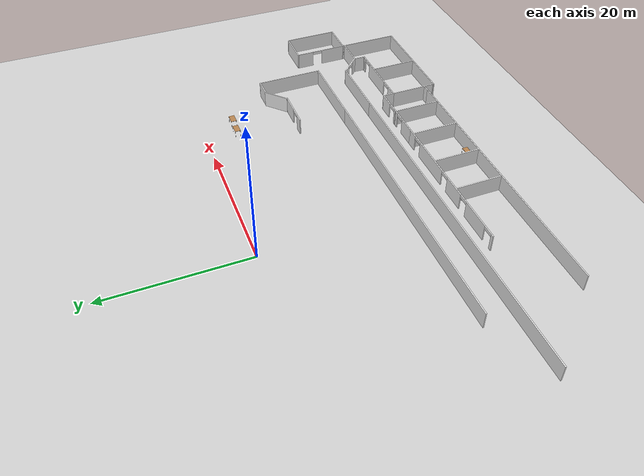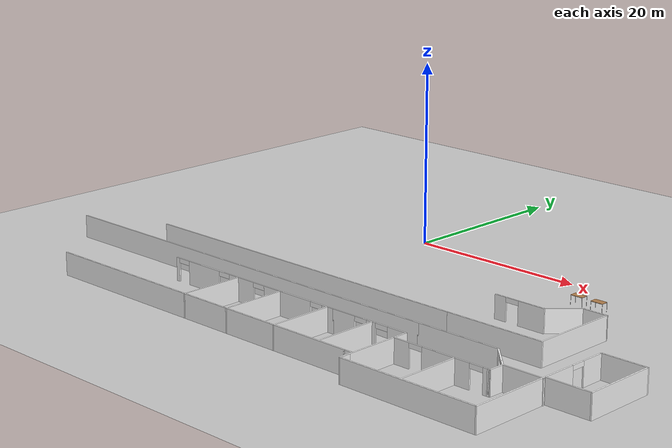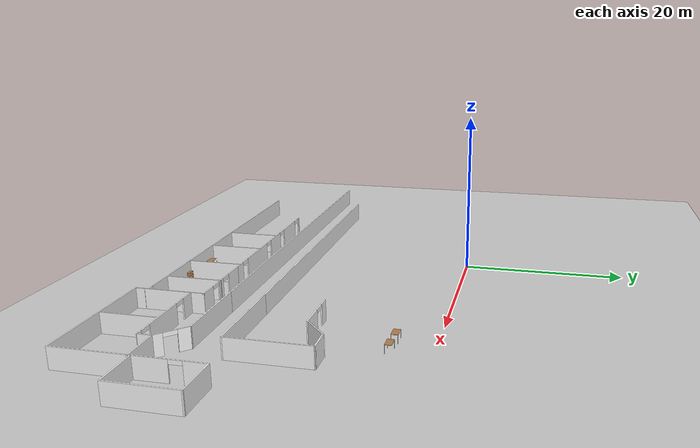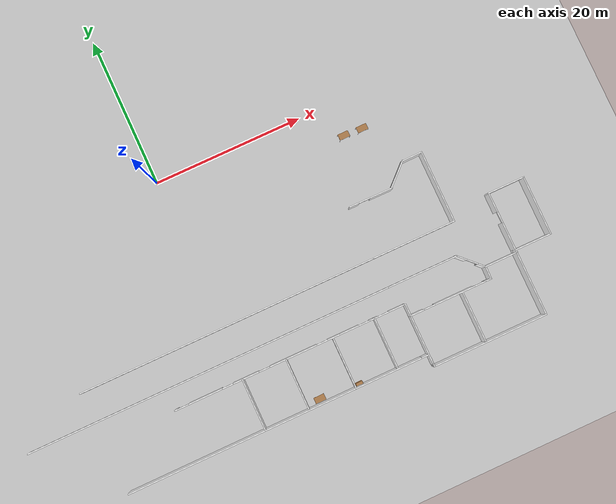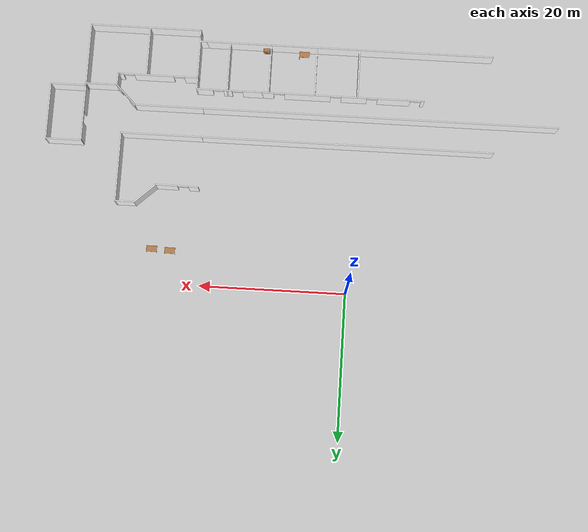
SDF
<sdf version="1.6">
 <world name="default">
  <model name="ground_plane">
   <static>1</static>
   <link name="link">
    <collision name="collision">
     <geometry><plane><normal>0 0 1</normal><size>100 100</size></plane></geometry>
     <surface><friction><ode><mu>100</mu><mu2>50</mu2></ode></friction></surface>
    </collision>
    <visual name="visual">
     <cast_shadows>0</cast_shadows>
     <geometry><plane><normal>0 0 1</normal><size>100 100</size></plane></geometry>
     <material>
      <script>
       <uri>model://office_env/materials/scripts</uri>
       <uri>model://office_env/materials/textures</uri>
       <name>wall</name>
      </script>
     </material>
    </visual>
   </link>
  </model>
  <model name="aule_N">
   <pose>0.1887 -1.4289 0 0 -0 0</pose>
   <link name="Wall_186">
    <pose>37.2203 -21.5545 0 0 0 -1.5708</pose>
    <visual name="Wall_186_Visual_0">
     <pose>-2.80179 0 1.25 0 -0 0</pose>
     <geometry><box><size>2.64642 0.15 2.5</size></box></geometry>
     <material>
      <script>
       <uri>model://office_env/materials/scripts</uri>
       <uri>model://office_env/materials/textures</uri>
       <name>wall</name>
      </script>
      <ambient>1 1 1 1</ambient>
     </material>
    </visual>
    <collision name="Wall_186_Collision_0">
     <geometry><box><size>2.64642 0.15 2.5</size></box></geometry>
     <pose>-2.80179 0 1.25 0 -0 0</pose>
    </collision>
    <visual name="Wall_186_Visual_1">
     <pose>2.07321 0 1.25 0 -0 0</pose>
     <geometry><box><size>4.10358 0.15 2.5</size></box></geometry>
     <material>
      <script>
       <uri>model://office_env/materials/scripts</uri>
       <uri>model://office_env/materials/textures</uri>
       <name>wall</name>
      </script>
      <ambient>1 1 1 1</ambient>
     </material>
    </visual>
    <collision name="Wall_186_Collision_1">
     <geometry><box><size>4.10358 0.15 2.5</size></box></geometry>
     <pose>2.07321 0 1.25 0 -0 0</pose>
    </collision>
    <visual name="Wall_186_Visual_2">
     <pose>-0.728584 0 2.25 0 -0 0</pose>
     <geometry><box><size>1.5 0.15 0.5</size></box></geometry>
     <material>
      <script>
       <uri>model://office_env/materials/scripts</uri>
       <uri>model://office_env/materials/textures</uri>
       <name>wall</name>
      </script>
      <ambient>1 1 1 1</ambient>
     </material>
    </visual>
    <collision name="Wall_186_Collision_2">
     <geometry><box><size>1.5 0.15 0.5</size></box></geometry>
     <pose>-0.728584 0 2.25 0 -0 0</pose>
    </collision>
   </link>
   <link name="Wall_190">
    <collision name="Wall_190_Collision">
     <geometry><box><size>49.25 0.15 2.5</size></box></geometry>
     <pose>0 0 1.25 0 -0 0</pose>
    </collision>
    <visual name="Wall_190_Visual">
     <pose>0 0 1.25 0 -0 0</pose>
     <geometry><box><size>49.25 0.15 2.5</size></box></geometry>
     <material>
      <script>
       <uri>model://office_env/materials/scripts</uri>
       <uri>model://office_env/materials/textures</uri>
       <name>wall</name>
      </script>
      <ambient>1 1 1 1</ambient>
     </material>
    </visual>
    <pose>-3.68943 -22.9551 0 0 -0 0</pose>
   </link>
   <link name="Wall_192">
    <collision name="Wall_192_Collision">
     <geometry><box><size>9.5 0.15 2.5</size></box></geometry>
     <pose>0 0 1.25 0 -0 0</pose>
    </collision>
    <visual name="Wall_192_Visual">
     <pose>0 0 1.25 0 -0 0</pose>
     <geometry><box><size>9.5 0.15 2.5</size></box></geometry>
     <material>
      <script>
       <uri>model://office_env/materials/scripts</uri>
       <uri>model://office_env/materials/textures</uri>
       <name>wall</name>
      </script>
      <ambient>1 1 1 1</ambient>
     </material>
    </visual>
    <pose>25.5356 -22.9551 0 0 -0 0</pose>
   </link>
   <link name="Wall_193">
    <pose>31.5718 -24.3163 0 0 0 -0.785398</pose>
    <visual name="Wall_193_Visual_0">
     <pose>-1.29532 0 1.25 0 -0 0</pose>
     <geometry><box><size>1.40936 0.15 2.5</size></box></geometry>
     <material>
      <script>
       <uri>model://office_env/materials/scripts</uri>
       <uri>model://office_env/materials/textures</uri>
       <name>wall</name>
      </script>
      <ambient>1 1 1 1</ambient>
     </material>
    </visual>
    <collision name="Wall_193_Collision_0">
     <geometry><box><size>1.40936 0.15 2.5</size></box></geometry>
     <pose>-1.29532 0 1.25 0 -0 0</pose>
    </collision>
    <visual name="Wall_193_Visual_1">
     <pose>1.45468 0 1.25 0 -0 0</pose>
     <geometry><box><size>1.09064 0.15 2.5</size></box></geometry>
     <material>
      <script>
       <uri>model://office_env/materials/scripts</uri>
       <uri>model://office_env/materials/textures</uri>
       <name>wall</name>
      </script>
      <ambient>1 1 1 1</ambient>
     </material>
    </visual>
    <collision name="Wall_193_Collision_1">
     <geometry><box><size>1.09064 0.15 2.5</size></box></geometry>
     <pose>1.45468 0 1.25 0 -0 0</pose>
    </collision>
    <visual name="Wall_193_Visual_2">
     <pose>0.15936 0 2.25 0 -0 0</pose>
     <geometry><box><size>1.5 0.15 0.5</size></box></geometry>
     <material>
      <script>
       <uri>model://office_env/materials/scripts</uri>
       <uri>model://office_env/materials/textures</uri>
       <name>wall</name>
      </script>
      <ambient>1 1 1 1</ambient>
     </material>
    </visual>
    <collision name="Wall_193_Collision_2">
     <geometry><box><size>1.5 0.15 0.5</size></box></geometry>
     <pose>0.15936 0 2.25 0 -0 0</pose>
    </collision>
   </link>
   <link name="Wall_194">
    <collision name="Wall_194_Collision">
     <geometry><box><size>4.5 0.15 2.5</size></box></geometry>
     <pose>0 0 1.25 0 -0 0</pose>
    </collision>
    <visual name="Wall_194_Visual">
     <pose>0 0 1.25 0 -0 0</pose>
     <geometry><box><size>4.5 0.15 2.5</size></box></geometry>
     <material>
      <script>
       <uri>model://office_env/materials/scripts</uri>
       <uri>model://office_env/materials/textures</uri>
       <name>wall</name>
      </script>
      <ambient>1 1 1 1</ambient>
     </material>
    </visual>
    <pose>35.1079 -25.6775 0 0 -0 0</pose>
   </link>
   <link name="Wall_201">
    <pose>1.5658 -25.7162 0 0 -0 0</pose>
    <visual name="Wall_201_Visual_0">
     <pose>-11.0306 0 1.25 0 -0 0</pose>
     <geometry><box><size>0.438757 0.15 2.5</size></box></geometry>
     <material>
      <script>
       <uri>model://office_env/materials/scripts</uri>
       <uri>model://office_env/materials/textures</uri>
       <name>wall</name>
      </script>
      <ambient>1 1 1 1</ambient>
     </material>
    </visual>
    <collision name="Wall_201_Collision_0">
     <geometry><box><size>0.438757 0.15 2.5</size></box></geometry>
     <pose>-11.0306 0 1.25 0 -0 0</pose>
    </collision>
    <visual name="Wall_201_Visual_1">
     <pose>-7.0473 0 1.25 0 -0 0</pose>
     <geometry><box><size>4.52788 0.15 2.5</size></box></geometry>
     <material>
      <script>
       <uri>model://office_env/materials/scripts</uri>
       <uri>model://office_env/materials/textures</uri>
       <name>wall</name>
      </script>
      <ambient>1 1 1 1</ambient>
     </material>
    </visual>
    <collision name="Wall_201_Collision_1">
     <geometry><box><size>4.52788 0.15 2.5</size></box></geometry>
     <pose>-7.0473 0 1.25 0 -0 0</pose>
    </collision>
    <visual name="Wall_201_Visual_2">
     <pose>-1.52512 0 1.25 0 -0 0</pose>
     <geometry><box><size>3.51649 0.15 2.5</size></box></geometry>
     <material>
      <script>
       <uri>model://office_env/materials/scripts</uri>
       <uri>model://office_env/materials/textures</uri>
       <name>wall</name>
      </script>
      <ambient>1 1 1 1</ambient>
     </material>
    </visual>
    <collision name="Wall_201_Collision_2">
     <geometry><box><size>3.51649 0.15 2.5</size></box></geometry>
     <pose>-1.52512 0 1.25 0 -0 0</pose>
    </collision>
    <visual name="Wall_201_Visual_3">
     <pose>4.92755 0 1.25 0 -0 0</pose>
     <geometry><box><size>6.38884 0.15 2.5</size></box></geometry>
     <material>
      <script>
       <uri>model://office_env/materials/scripts</uri>
       <uri>model://office_env/materials/textures</uri>
       <name>wall</name>
      </script>
      <ambient>1 1 1 1</ambient>
     </material>
    </visual>
    <collision name="Wall_201_Collision_3">
     <geometry><box><size>6.38884 0.15 2.5</size></box></geometry>
     <pose>4.92755 0 1.25 0 -0 0</pose>
    </collision>
    <visual name="Wall_201_Visual_4">
     <pose>10.436 0 1.25 0 -0 0</pose>
     <geometry><box><size>1.62803 0.15 2.5</size></box></geometry>
     <material>
      <script>
       <uri>model://office_env/materials/scripts</uri>
       <uri>model://office_env/materials/textures</uri>
       <name>wall</name>
      </script>
      <ambient>1 1 1 1</ambient>
     </material>
    </visual>
    <collision name="Wall_201_Collision_4">
     <geometry><box><size>1.62803 0.15 2.5</size></box></geometry>
     <pose>10.436 0 1.25 0 -0 0</pose>
    </collision>
    <visual name="Wall_201_Visual_5">
     <pose>-10.0612 0 2.25 0 -0 0</pose>
     <geometry><box><size>1.5 0.15 0.5</size></box></geometry>
     <material>
      <script>
       <uri>model://office_env/materials/scripts</uri>
       <uri>model://office_env/materials/textures</uri>
       <name>wall</name>
      </script>
      <ambient>1 1 1 1</ambient>
     </material>
    </visual>
    <collision name="Wall_201_Collision_5">
     <geometry><box><size>1.5 0.15 0.5</size></box></geometry>
     <pose>-10.0612 0 2.25 0 -0 0</pose>
    </collision>
    <visual name="Wall_201_Visual_6">
     <pose>-4.03336 0 2.25 0 -0 0</pose>
     <geometry><box><size>1.5 0.15 0.5</size></box></geometry>
     <material>
      <script>
       <uri>model://office_env/materials/scripts</uri>
       <uri>model://office_env/materials/textures</uri>
       <name>wall</name>
      </script>
      <ambient>1 1 1 1</ambient>
     </material>
    </visual>
    <collision name="Wall_201_Collision_6">
     <geometry><box><size>1.5 0.15 0.5</size></box></geometry>
     <pose>-4.03336 0 2.25 0 -0 0</pose>
    </collision>
    <visual name="Wall_201_Visual_7">
     <pose>0.98313 0 2.25 0 -0 0</pose>
     <geometry><box><size>1.5 0.15 0.5</size></box></geometry>
     <material>
      <script>
       <uri>model://office_env/materials/scripts</uri>
       <uri>model://office_env/materials/textures</uri>
       <name>wall</name>
      </script>
      <ambient>1 1 1 1</ambient>
     </material>
    </visual>
    <collision name="Wall_201_Collision_7">
     <geometry><box><size>1.5 0.15 0.5</size></box></geometry>
     <pose>0.98313 0 2.25 0 -0 0</pose>
    </collision>
    <visual name="Wall_201_Visual_8">
     <pose>8.87197 0 2.25 0 -0 0</pose>
     <geometry><box><size>1.5 0.15 0.5</size></box></geometry>
     <material>
      <script>
       <uri>model://office_env/materials/scripts</uri>
       <uri>model://office_env/materials/textures</uri>
       <name>wall</name>
      </script>
      <ambient>1 1 1 1</ambient>
     </material>
    </visual>
    <collision name="Wall_201_Collision_8">
     <geometry><box><size>1.5 0.15 0.5</size></box></geometry>
     <pose>8.87197 0 2.25 0 -0 0</pose>
    </collision>
   </link>
   <link name="Wall_202">
    <pose>17.2908 -25.7162 0 0 -0 0</pose>
    <visual name="Wall_202_Visual_0">
     <pose>-3.22144 0 1.25 0 -0 0</pose>
     <geometry><box><size>2.80712 0.15 2.5</size></box></geometry>
     <material>
      <script>
       <uri>model://office_env/materials/scripts</uri>
       <uri>model://office_env/materials/textures</uri>
       <name>wall</name>
      </script>
      <ambient>1 1 1 1</ambient>
     </material>
    </visual>
    <collision name="Wall_202_Collision_0">
     <geometry><box><size>2.80712 0.15 2.5</size></box></geometry>
     <pose>-3.22144 0 1.25 0 -0 0</pose>
    </collision>
    <visual name="Wall_202_Visual_1">
     <pose>0.246922 0 1.25 0 -0 0</pose>
     <geometry><box><size>1.12961 0.15 2.5</size></box></geometry>
     <material>
      <script>
       <uri>model://office_env/materials/scripts</uri>
       <uri>model://office_env/materials/textures</uri>
       <name>wall</name>
      </script>
      <ambient>1 1 1 1</ambient>
     </material>
    </visual>
    <collision name="Wall_202_Collision_1">
     <geometry><box><size>1.12961 0.15 2.5</size></box></geometry>
     <pose>0.246922 0 1.25 0 -0 0</pose>
    </collision>
    <visual name="Wall_202_Visual_2">
     <pose>3.46836 0 1.25 0 -0 0</pose>
     <geometry><box><size>2.31327 0.15 2.5</size></box></geometry>
     <material>
      <script>
       <uri>model://office_env/materials/scripts</uri>
       <uri>model://office_env/materials/textures</uri>
       <name>wall</name>
      </script>
      <ambient>1 1 1 1</ambient>
     </material>
    </visual>
    <collision name="Wall_202_Collision_2">
     <geometry><box><size>2.31327 0.15 2.5</size></box></geometry>
     <pose>3.46836 0 1.25 0 -0 0</pose>
    </collision>
    <visual name="Wall_202_Visual_3">
     <pose>-1.06788 0 2.25 0 -0 0</pose>
     <geometry><box><size>1.5 0.15 0.5</size></box></geometry>
     <material>
      <script>
       <uri>model://office_env/materials/scripts</uri>
       <uri>model://office_env/materials/textures</uri>
       <name>wall</name>
      </script>
      <ambient>1 1 1 1</ambient>
     </material>
    </visual>
    <collision name="Wall_202_Collision_3">
     <geometry><box><size>1.5 0.15 0.5</size></box></geometry>
     <pose>-1.06788 0 2.25 0 -0 0</pose>
    </collision>
    <visual name="Wall_202_Visual_4">
     <pose>1.56173 0 2.25 0 -0 0</pose>
     <geometry><box><size>1.5 0.15 0.5</size></box></geometry>
     <material>
      <script>
       <uri>model://office_env/materials/scripts</uri>
       <uri>model://office_env/materials/textures</uri>
       <name>wall</name>
      </script>
      <ambient>1 1 1 1</ambient>
     </material>
    </visual>
    <collision name="Wall_202_Collision_4">
     <geometry><box><size>1.5 0.15 0.5</size></box></geometry>
     <pose>1.56173 0 2.25 0 -0 0</pose>
    </collision>
   </link>
   <link name="Wall_203">
    <collision name="Wall_203_Collision">
     <geometry><box><size>1.75 0.15 2.5</size></box></geometry>
     <pose>0 0 1.25 0 -0 0</pose>
    </collision>
    <visual name="Wall_203_Visual">
     <pose>0 0 1.25 0 -0 0</pose>
     <geometry><box><size>1.75 0.15 2.5</size></box></geometry>
     <material>
      <script>
       <uri>model://office_env/materials/scripts</uri>
       <uri>model://office_env/materials/textures</uri>
       <name>wall</name>
      </script>
      <ambient>1 1 1 1</ambient>
     </material>
    </visual>
    <pose>21.8408 -26.5162 0 0 0 -1.5708</pose>
   </link>
   <link name="Wall_204">
    <pose>27.2658 -27.3162 0 0 -0 0</pose>
    <visual name="Wall_204_Visual_0">
     <pose>-4.54037 0 1.25 0 -0 0</pose>
     <geometry><box><size>1.91926 0.15 2.5</size></box></geometry>
     <material>
      <script>
       <uri>model://office_env/materials/scripts</uri>
       <uri>model://office_env/materials/textures</uri>
       <name>wall</name>
      </script>
      <ambient>1 1 1 1</ambient>
     </material>
    </visual>
    <collision name="Wall_204_Collision_0">
     <geometry><box><size>1.91926 0.15 2.5</size></box></geometry>
     <pose>-4.54037 0 1.25 0 -0 0</pose>
    </collision>
    <visual name="Wall_204_Visual_1">
     <pose>0.656549 0 1.25 0 -0 0</pose>
     <geometry><box><size>5.47457 0.15 2.5</size></box></geometry>
     <material>
      <script>
       <uri>model://office_env/materials/scripts</uri>
       <uri>model://office_env/materials/textures</uri>
       <name>wall</name>
      </script>
      <ambient>1 1 1 1</ambient>
     </material>
    </visual>
    <collision name="Wall_204_Collision_1">
     <geometry><box><size>5.47457 0.15 2.5</size></box></geometry>
     <pose>0.656549 0 1.25 0 -0 0</pose>
    </collision>
    <visual name="Wall_204_Visual_2">
     <pose>5.19692 0 1.25 0 -0 0</pose>
     <geometry><box><size>0.606165 0.15 2.5</size></box></geometry>
     <material>
      <script>
       <uri>model://office_env/materials/scripts</uri>
       <uri>model://office_env/materials/textures</uri>
       <name>wall</name>
      </script>
      <ambient>1 1 1 1</ambient>
     </material>
    </visual>
    <collision name="Wall_204_Collision_2">
     <geometry><box><size>0.606165 0.15 2.5</size></box></geometry>
     <pose>5.19692 0 1.25 0 -0 0</pose>
    </collision>
    <visual name="Wall_204_Visual_3">
     <pose>-2.83074 0 2.25 0 -0 0</pose>
     <geometry><box><size>1.5 0.15 0.5</size></box></geometry>
     <material>
      <script>
       <uri>model://office_env/materials/scripts</uri>
       <uri>model://office_env/materials/textures</uri>
       <name>wall</name>
      </script>
      <ambient>1 1 1 1</ambient>
     </material>
    </visual>
    <collision name="Wall_204_Collision_3">
     <geometry><box><size>1.5 0.15 0.5</size></box></geometry>
     <pose>-2.83074 0 2.25 0 -0 0</pose>
    </collision>
    <visual name="Wall_204_Visual_4">
     <pose>4.14384 0 2.25 0 -0 0</pose>
     <geometry><box><size>1.5 0.15 0.5</size></box></geometry>
     <material>
      <script>
       <uri>model://office_env/materials/scripts</uri>
       <uri>model://office_env/materials/textures</uri>
       <name>wall</name>
      </script>
      <ambient>1 1 1 1</ambient>
     </material>
    </visual>
    <collision name="Wall_204_Collision_4">
     <geometry><box><size>1.5 0.15 0.5</size></box></geometry>
     <pose>4.14384 0 2.25 0 -0 0</pose>
    </collision>
   </link>
   <link name="Wall_205">
    <collision name="Wall_205_Collision">
     <geometry><box><size>0.25 0.15 2.5</size></box></geometry>
     <pose>0 0 1.25 0 -0 0</pose>
    </collision>
    <visual name="Wall_205_Visual">
     <pose>0 0 1.25 0 -0 0</pose>
     <geometry><box><size>0.25 0.15 2.5</size></box></geometry>
     <material>
      <script>
       <uri>model://office_env/materials/scripts</uri>
       <uri>model://office_env/materials/textures</uri>
       <name>wall</name>
      </script>
      <ambient>1 1 1 1</ambient>
     </material>
    </visual>
    <pose>32.7408 -27.3162 0 0 -0 0</pose>
   </link>
   <link name="Wall_206">
    <collision name="Wall_206_Collision">
     <geometry><box><size>0.25 0.15 2.5</size></box></geometry>
     <pose>0 0 1.25 0 -0 0</pose>
    </collision>
    <visual name="Wall_206_Visual">
     <pose>0 0 1.25 0 -0 0</pose>
     <geometry><box><size>0.25 0.15 2.5</size></box></geometry>
     <material>
      <script>
       <uri>model://office_env/materials/scripts</uri>
       <uri>model://office_env/materials/textures</uri>
       <name>wall</name>
      </script>
      <ambient>1 1 1 1</ambient>
     </material>
    </visual>
    <pose>32.8408 -27.3162 0 0 -0 0</pose>
   </link>
   <link name="Wall_207">
    <collision name="Wall_207_Collision">
     <geometry><box><size>1.78929 0.15 2.5</size></box></geometry>
     <pose>0 0 1.25 0 -0 0</pose>
    </collision>
    <visual name="Wall_207_Visual">
     <pose>0 0 1.25 0 -0 0</pose>
     <geometry><box><size>1.78929 0.15 2.5</size></box></geometry>
     <material>
      <script>
       <uri>model://office_env/materials/scripts</uri>
       <uri>model://office_env/materials/textures</uri>
       <name>wall</name>
      </script>
      <ambient>1 1 1 1</ambient>
     </material>
    </visual>
    <pose>32.9119 -26.4969 0 0 -0 1.54509</pose>
   </link>
   <link name="Wall_209">
    <collision name="Wall_209_Collision">
     <geometry><box><size>6.75 0.15 2.5</size></box></geometry>
     <pose>0 0 1.25 0 -0 0</pose>
    </collision>
    <visual name="Wall_209_Visual">
     <pose>0 0 1.25 0 -0 0</pose>
     <geometry><box><size>6.75 0.15 2.5</size></box></geometry>
     <material>
      <script>
       <uri>model://office_env/materials/scripts</uri>
       <uri>model://office_env/materials/textures</uri>
       <name>wall</name>
      </script>
      <ambient>1 1 1 1</ambient>
     </material>
    </visual>
    <pose>21.8408 -30.6162 0 0 0 -1.5708</pose>
   </link>
   <link name="Wall_213">
    <collision name="Wall_213_Collision">
     <geometry><box><size>7 0.15 2.5</size></box></geometry>
     <pose>0 0 1.25 0 -0 0</pose>
    </collision>
    <visual name="Wall_213_Visual">
     <pose>0 0 1.25 0 -0 0</pose>
     <geometry><box><size>7 0.15 2.5</size></box></geometry>
     <material>
      <script>
       <uri>model://office_env/materials/scripts</uri>
       <uri>model://office_env/materials/textures</uri>
       <name>wall</name>
      </script>
      <ambient>1 1 1 1</ambient>
     </material>
    </visual>
    <pose>17.6159 -29.1253 0 0 0 -1.5708</pose>
   </link>
   <link name="Wall_217">
    <collision name="Wall_217_Collision">
     <geometry><box><size>7 0.15 2.5</size></box></geometry>
     <pose>0 0 1.25 0 -0 0</pose>
    </collision>
    <visual name="Wall_217_Visual">
     <pose>0 0 1.25 0 -0 0</pose>
     <geometry><box><size>7 0.15 2.5</size></box></geometry>
     <material>
      <script>
       <uri>model://office_env/materials/scripts</uri>
       <uri>model://office_env/materials/textures</uri>
       <name>wall</name>
      </script>
      <ambient>1 1 1 1</ambient>
     </material>
    </visual>
    <pose>11.8942 -29.1817 0 0 0 -1.5708</pose>
   </link>
   <link name="Wall_219">
    <collision name="Wall_219_Collision">
     <geometry><box><size>7 0.15 2.5</size></box></geometry>
     <pose>0 0 1.25 0 -0 0</pose>
    </collision>
    <visual name="Wall_219_Visual">
     <pose>0 0 1.25 0 -0 0</pose>
     <geometry><box><size>7 0.15 2.5</size></box></geometry>
     <material>
      <script>
       <uri>model://office_env/materials/scripts</uri>
       <uri>model://office_env/materials/textures</uri>
       <name>wall</name>
      </script>
      <ambient>1 1 1 1</ambient>
     </material>
    </visual>
    <pose>5.50219 -29.1817 0 0 0 -1.5708</pose>
   </link>
   <link name="Wall_22">
    <collision name="Wall_22_Collision">
     <geometry><box><size>40 0.15 2.5</size></box></geometry>
     <pose>0 0 1.25 0 -0 0</pose>
    </collision>
    <visual name="Wall_22_Visual">
     <pose>0 0 1.25 0 -0 0</pose>
     <geometry><box><size>40 0.15 2.5</size></box></geometry>
     <material>
      <script>
       <uri>model://office_env/materials/scripts</uri>
       <uri>model://office_env/materials/textures</uri>
       <name>wall</name>
      </script>
      <ambient>1 1 1 1</ambient>
     </material>
    </visual>
    <pose>0.945301 -32.6045 0 0 -0 0</pose>
   </link>
   <link name="Wall_221">
    <collision name="Wall_221_Collision">
     <geometry><box><size>7 0.15 2.5</size></box></geometry>
     <pose>0 0 1.25 0 -0 0</pose>
    </collision>
    <visual name="Wall_221_Visual">
     <pose>0 0 1.25 0 -0 0</pose>
     <geometry><box><size>7 0.15 2.5</size></box></geometry>
     <material>
      <script>
       <uri>model://office_env/materials/scripts</uri>
       <uri>model://office_env/materials/textures</uri>
       <name>wall</name>
      </script>
      <ambient>1 1 1 1</ambient>
     </material>
    </visual>
    <pose>-0.444779 -29.1817 0 0 0 -1.5708</pose>
   </link>
   <link name="Wall_233">
    <collision name="Wall_233_Collision">
     <geometry><box><size>15.5 0.15 2.5</size></box></geometry>
     <pose>0 0 1.25 0 -0 0</pose>
    </collision>
    <visual name="Wall_233_Visual">
     <pose>0 0 1.25 0 -0 0</pose>
     <geometry><box><size>15.5 0.15 2.5</size></box></geometry>
     <material>
      <script>
       <uri>model://office_env/materials/scripts</uri>
       <uri>model://office_env/materials/textures</uri>
       <name>wall</name>
      </script>
      <ambient>1 1 1 1</ambient>
     </material>
    </visual>
    <pose>29.5453 -34.2006 0 0 -0 3.14159</pose>
   </link>
   <link name="Wall_234">
    <collision name="Wall_234_Collision">
     <geometry><box><size>1.25 0.15 2.5</size></box></geometry>
     <pose>0 0 1.25 0 -0 0</pose>
    </collision>
    <visual name="Wall_234_Visual">
     <pose>0 0 1.25 0 -0 0</pose>
     <geometry><box><size>1.25 0.15 2.5</size></box></geometry>
     <material>
      <script>
       <uri>model://office_env/materials/scripts</uri>
       <uri>model://office_env/materials/textures</uri>
       <name>wall</name>
      </script>
      <ambient>1 1 1 1</ambient>
     </material>
    </visual>
    <pose>21.8703 -33.6506 0 0 -0 1.5708</pose>
   </link>
   <link name="Wall_236">
    <collision name="Wall_236_Collision">
     <geometry><box><size>1 0.15 2.5</size></box></geometry>
     <pose>0 0 1.25 0 -0 0</pose>
    </collision>
    <visual name="Wall_236_Visual">
     <pose>0 0 1.25 0 -0 0</pose>
     <geometry><box><size>1 0.15 2.5</size></box></geometry>
     <material>
      <script>
       <uri>model://office_env/materials/scripts</uri>
       <uri>model://office_env/materials/textures</uri>
       <name>wall</name>
      </script>
      <ambient>1 1 1 1</ambient>
     </material>
    </visual>
    <pose>21.2953 -32.6045 0 0 -0 0</pose>
   </link>
   <link name="Wall_240">
    <collision name="Wall_240_Collision">
     <geometry><box><size>6.75 0.15 2.5</size></box></geometry>
     <pose>0 0 1.25 0 -0 0</pose>
    </collision>
    <visual name="Wall_240_Visual">
     <pose>0 0 1.25 0 -0 0</pose>
     <geometry><box><size>6.75 0.15 2.5</size></box></geometry>
     <material>
      <script>
       <uri>model://office_env/materials/scripts</uri>
       <uri>model://office_env/materials/textures</uri>
       <name>wall</name>
      </script>
      <ambient>1 1 1 1</ambient>
     </material>
    </visual>
    <pose>28.9447 -30.738 0 0 0 -1.5708</pose>
   </link>
   <link name="Wall_27">
    <collision name="Wall_27_Collision">
     <geometry><box><size>8.99611 0.15 2.5</size></box></geometry>
     <pose>0 0 1.25 0 -0 0</pose>
    </collision>
    <visual name="Wall_27_Visual">
     <pose>0 0 1.25 0 -0 0</pose>
     <geometry><box><size>8.99611 0.15 2.5</size></box></geometry>
     <material>
      <script>
       <uri>model://office_env/materials/scripts</uri>
       <uri>model://office_env/materials/textures</uri>
       <name>wall</name>
      </script>
      <ambient>1 1 1 1</ambient>
     </material>
    </visual>
    <pose>37.2203 -29.7776 0 0 -0 1.5708</pose>
   </link>
   <link name="Wall_34">
    <collision name="Wall_34_Collision">
     <geometry><box><size>5 0.15 2.5</size></box></geometry>
     <pose>0 0 1.25 0 -0 0</pose>
    </collision>
    <visual name="Wall_34_Visual">
     <pose>0 0 1.25 0 -0 0</pose>
     <geometry><box><size>5 0.15 2.5</size></box></geometry>
     <material>
      <script>
       <uri>model://office_env/materials/scripts</uri>
       <uri>model://office_env/materials/textures</uri>
       <name>wall</name>
      </script>
      <ambient>1 1 1 1</ambient>
     </material>
    </visual>
    <pose>39.6453 -25.3545 0 0 -0 0</pose>
   </link>
   <link name="Wall_35">
    <collision name="Wall_35_Collision">
     <geometry><box><size>8 0.15 2.5</size></box></geometry>
     <pose>0 0 1.25 0 -0 0</pose>
    </collision>
    <visual name="Wall_35_Visual">
     <pose>0 0 1.25 0 -0 0</pose>
     <geometry><box><size>8 0.15 2.5</size></box></geometry>
     <material>
      <script>
       <uri>model://office_env/materials/scripts</uri>
       <uri>model://office_env/materials/textures</uri>
       <name>wall</name>
      </script>
      <ambient>1 1 1 1</ambient>
     </material>
    </visual>
    <pose>42.0703 -21.4295 0 0 -0 1.5708</pose>
   </link>
   <link name="Wall_36">
    <collision name="Wall_36_Collision">
     <geometry><box><size>5 0.15 2.5</size></box></geometry>
     <pose>0 0 1.25 0 -0 0</pose>
    </collision>
    <visual name="Wall_36_Visual">
     <pose>0 0 1.25 0 -0 0</pose>
     <geometry><box><size>5 0.15 2.5</size></box></geometry>
     <material>
      <script>
       <uri>model://office_env/materials/scripts</uri>
       <uri>model://office_env/materials/textures</uri>
       <name>wall</name>
      </script>
      <ambient>1 1 1 1</ambient>
     </material>
    </visual>
    <pose>39.6453 -17.5045 0 0 -0 3.14159</pose>
   </link>
   <link name="Wall_46">
    <collision name="Wall_46_Collision">
     <geometry><box><size>40.25 0.15 2.5</size></box></geometry>
     <pose>0 0 1.25 0 -0 0</pose>
    </collision>
    <visual name="Wall_46_Visual">
     <pose>0 0 1.25 0 -0 0</pose>
     <geometry><box><size>40.25 0.15 2.5</size></box></geometry>
     <material>
      <script>
       <uri>model://office_env/materials/scripts</uri>
       <uri>model://office_env/materials/textures</uri>
       <name>wall</name>
      </script>
      <ambient>1 1 1 1</ambient>
     </material>
    </visual>
    <pose>0.642861 -18.8861 0 0 -0 0</pose>
   </link>
   <link name="Wall_74">
    <collision name="Wall_74_Collision">
     <geometry><box><size>2.7028 0.15 2.5</size></box></geometry>
     <pose>0 0 1.25 0 -0 0</pose>
    </collision>
    <visual name="Wall_74_Visual">
     <pose>0 0 1.25 0 -0 0</pose>
     <geometry><box><size>2.7028 0.15 2.5</size></box></geometry>
     <material>
      <script>
       <uri>model://office_env/materials/scripts</uri>
       <uri>model://office_env/materials/textures</uri>
       <name>wall</name>
      </script>
      <ambient>1 1 1 1</ambient>
     </material>
    </visual>
    <pose>30.5208 -9.29683 0 0 0 -3.12997</pose>
   </link>
   <link name="Wall_80">
    <collision name="Wall_80_Collision">
     <geometry><box><size>3.78679 0.15 2.5</size></box></geometry>
     <pose>0 0 1.25 0 -0 0</pose>
    </collision>
    <visual name="Wall_80_Visual">
     <pose>0 0 1.25 0 -0 0</pose>
     <geometry><box><size>3.78679 0.15 2.5</size></box></geometry>
     <material>
      <script>
       <uri>model://office_env/materials/scripts</uri>
       <uri>model://office_env/materials/textures</uri>
       <name>wall</name>
      </script>
      <ambient>1 1 1 1</ambient>
     </material>
    </visual>
    <pose>27.8481 -10.5208 0 0 0 -2.38797</pose>
   </link>
   <link name="Wall_81">
    <pose>23.6204 -11.8349 0 0 -0 3.13358</pose>
    <visual name="Wall_81_Visual_0">
     <pose>-1.42133 0 1.25 0 -0 0</pose>
     <geometry><box><size>3.111 0.15 2.5</size></box></geometry>
     <material>
      <script>
       <uri>model://office_env/materials/scripts</uri>
       <uri>model://office_env/materials/textures</uri>
       <name>wall</name>
      </script>
      <ambient>1 1 1 1</ambient>
     </material>
    </visual>
    <collision name="Wall_81_Collision_0">
     <geometry><box><size>3.111 0.15 2.5</size></box></geometry>
     <pose>-1.42133 0 1.25 0 -0 0</pose>
    </collision>
    <visual name="Wall_81_Visual_1">
     <pose>2.3055 0 1.25 0 -0 0</pose>
     <geometry><box><size>1.34266 0.15 2.5</size></box></geometry>
     <material>
      <script>
       <uri>model://office_env/materials/scripts</uri>
       <uri>model://office_env/materials/textures</uri>
       <name>wall</name>
      </script>
      <ambient>1 1 1 1</ambient>
     </material>
    </visual>
    <collision name="Wall_81_Collision_1">
     <geometry><box><size>1.34266 0.15 2.5</size></box></geometry>
     <pose>2.3055 0 1.25 0 -0 0</pose>
    </collision>
    <visual name="Wall_81_Visual_2">
     <pose>0.88417 0 2.25 0 -0 0</pose>
     <geometry><box><size>1.5 0.15 0.5</size></box></geometry>
     <material>
      <script>
       <uri>model://office_env/materials/scripts</uri>
       <uri>model://office_env/materials/textures</uri>
       <name>wall</name>
      </script>
      <ambient>1 1 1 1</ambient>
     </material>
    </visual>
    <collision name="Wall_81_Collision_2">
     <geometry><box><size>1.5 0.15 0.5</size></box></geometry>
     <pose>0.88417 0 2.25 0 -0 0</pose>
    </collision>
   </link>
   <link name="Wall_94">
    <collision name="Wall_94_Collision">
     <geometry><box><size>9.75 0.15 2.5</size></box></geometry>
     <pose>0 0 1.25 0 -0 0</pose>
    </collision>
    <visual name="Wall_94_Visual">
     <pose>0 0 1.25 0 -0 0</pose>
     <geometry><box><size>9.75 0.15 2.5</size></box></geometry>
     <material>
      <script>
       <uri>model://office_env/materials/scripts</uri>
       <uri>model://office_env/materials/textures</uri>
       <name>wall</name>
      </script>
      <ambient>1 1 1 1</ambient>
     </material>
    </visual>
    <pose>31.7971 -14.082 0 0 0 -1.5708</pose>
   </link>
   <link name="Wall_95">
    <collision name="Wall_95_Collision">
     <geometry><box><size>11.25 0.15 2.5</size></box></geometry>
     <pose>0 0 1.25 0 -0 0</pose>
    </collision>
    <visual name="Wall_95_Visual">
     <pose>0 0 1.25 0 -0 0</pose>
     <geometry><box><size>11.25 0.15 2.5</size></box></geometry>
     <material>
      <script>
       <uri>model://office_env/materials/scripts</uri>
       <uri>model://office_env/materials/textures</uri>
       <name>wall</name>
      </script>
      <ambient>1 1 1 1</ambient>
     </material>
    </visual>
    <pose>26.2471 -18.882 0 0 -0 3.14159</pose>
   </link>
   <static>1</static>
  </model>
  <model name="bookshelf_0">
   <static>1</static>
   <link name="link">
    <inertial><mass>1</mass></inertial>
    <collision name="back">
     <pose>0 0.005 0.6 0 -0 0</pose>
     <geometry><box><size>0.9 0.01 1.2</size></box></geometry>
    </collision>
    <visual name="visual1">
     <pose>0 0.005 0.6 0 -0 0</pose>
     <geometry><box><size>0.9 0.01 1.2</size></box></geometry>
     <material>
      <script><uri>file://media/materials/scripts/gazebo.material</uri><name>Gazebo/Wood</name></script>
     </material>
    </visual>
    <collision name="left_side">
     <pose>0.45 -0.195 0.6 0 -0 0</pose>
     <geometry><box><size>0.02 0.4 1.2</size></box></geometry>
    </collision>
    <visual name="visual2">
     <pose>0.45 -0.195 0.6 0 -0 0</pose>
     <geometry><box><size>0.02 0.4 1.2</size></box></geometry>
     <material>
      <script><uri>file://media/materials/scripts/gazebo.material</uri><name>Gazebo/Wood</name></script>
     </material>
    </visual>
    <collision name="right_side">
     <pose>-0.45 -0.195 0.6 0 -0 0</pose>
     <geometry><box><size>0.02 0.4 1.2</size></box></geometry>
    </collision>
    <visual name="visual3">
     <pose>-0.45 -0.195 0.6 0 -0 0</pose>
     <geometry><box><size>0.02 0.4 1.2</size></box></geometry>
     <material>
      <script><uri>file://media/materials/scripts/gazebo.material</uri><name>Gazebo/Wood</name></script>
     </material>
    </visual>
    <collision name="bottom">
     <pose>0 -0.195 0.03 0 -0 0</pose>
     <geometry><box><size>0.88 0.4 0.06</size></box></geometry>
    </collision>
    <visual name="visual4">
     <pose>0 -0.195 0.03 0 -0 0</pose>
     <geometry><box><size>0.88 0.4 0.06</size></box></geometry>
     <material>
      <script><uri>file://media/materials/scripts/gazebo.material</uri><name>Gazebo/Wood</name></script>
     </material>
    </visual>
    <collision name="top">
     <pose>0 -0.195 1.19 0 -0 0</pose>
     <geometry><box><size>0.88 0.4 0.02</size></box></geometry>
    </collision>
    <visual name="visual5">
     <pose>0 -0.195 1.19 0 -0 0</pose>
     <geometry><box><size>0.88 0.4 0.02</size></box></geometry>
     <material>
      <script><uri>file://media/materials/scripts/gazebo.material</uri><name>Gazebo/Wood</name></script>
     </material>
    </visual>
    <collision name="low_shelf">
     <pose>0 -0.195 0.43 0 -0 0</pose>
     <geometry><box><size>0.88 0.4 0.02</size></box></geometry>
    </collision>
    <visual name="visual6">
     <pose>0 -0.195 0.43 0 -0 0</pose>
     <geometry><box><size>0.88 0.4 0.02</size></box></geometry>
     <material>
      <script><uri>file://media/materials/scripts/gazebo.material</uri><name>Gazebo/Wood</name></script>
     </material>
    </visual>
    <collision name="high_shelf">
     <pose>0 -0.195 0.8 0 -0 0</pose>
     <geometry><box><size>0.88 0.4 0.02</size></box></geometry>
    </collision>
    <visual name="visual7">
     <pose>0 -0.195 0.8 0 -0 0</pose>
     <geometry><box><size>0.88 0.4 0.02</size></box></geometry>
     <material>
      <script><uri>file://media/materials/scripts/gazebo.material</uri><name>Gazebo/Wood</name></script>
     </material>
    </visual>
   </link>
   <pose>12.7495 -33.991 0 0 0 -3.1053</pose>
  </model>
  <model name="table">
   <static>0</static>
   <link name="link">
    <collision name="surface">
     <pose>0 0 1 0 -0 0</pose>
     <geometry><box><size>1.5 0.8 0.03</size></box></geometry>
     <surface><friction><ode><mu>0.6</mu><mu2>0.6</mu2></ode></friction></surface>
    </collision>
    <visual name="visual1">
     <pose>0 0 1 0 -0 0</pose>
     <geometry><box><size>1.4 0.8 0.04</size></box></geometry>
     <material>
      <script><uri>file://media/materials/scripts/gazebo.material</uri><name>Gazebo/Wood</name></script>
     </material>
    </visual>
    <collision name="front_left_leg">
     <pose>0.68 0.38 0.5 0 -0 0</pose>
     <geometry><cylinder><radius>0.02</radius><length>1</length></cylinder></geometry>
    </collision>
    <visual name="front_left_leg">
     <pose>0.68 0.38 0.5 0 -0 0</pose>
     <geometry><cylinder><radius>0.02</radius><length>1</length></cylinder></geometry>
     <material>
      <script>
       <uri>model://office_env/materials/scripts</uri>
       <uri>model://office_env/materials/textures</uri>
       <name>wall</name>
      </script>
     </material>
    </visual>
    <collision name="front_right_leg">
     <pose>0.68 -0.38 0.5 0 -0 0</pose>
     <geometry><cylinder><radius>0.02</radius><length>1</length></cylinder></geometry>
    </collision>
    <visual name="front_right_leg">
     <pose>0.68 -0.38 0.5 0 -0 0</pose>
     <geometry><cylinder><radius>0.02</radius><length>1</length></cylinder></geometry>
     <material>
      <script>
       <uri>model://office_env/materials/scripts</uri>
       <uri>model://office_env/materials/textures</uri>
       <name>wall</name>
      </script>
     </material>
    </visual>
    <collision name="back_right_leg">
     <pose>-0.68 -0.38 0.5 0 -0 0</pose>
     <geometry><cylinder><radius>0.02</radius><length>1</length></cylinder></geometry>
    </collision>
    <visual name="back_right_leg">
     <pose>-0.68 -0.38 0.5 0 -0 0</pose>
     <geometry><cylinder><radius>0.02</radius><length>1</length></cylinder></geometry>
     <material>
      <script>
       <uri>model://office_env/materials/scripts</uri>
       <uri>model://office_env/materials/textures</uri>
       <name>wall</name>
      </script>
     </material>
    </visual>
    <collision name="back_left_leg">
     <pose>-0.68 0.38 0.5 0 -0 0</pose>
     <geometry><cylinder><radius>0.02</radius><length>1</length></cylinder></geometry>
    </collision>
    <visual name="back_left_leg">
     <pose>-0.68 0.38 0.5 0 -0 0</pose>
     <geometry><cylinder><radius>0.02</radius><length>1</length></cylinder></geometry>
     <material>
      <script>
       <uri>model://office_env/materials/scripts</uri>
       <uri>model://office_env/materials/textures</uri>
       <name>wall</name>
      </script>
     </material>
    </visual>
    <inertial>
     <inertia><ixx>1</ixx><ixy>0</ixy><ixz>0</ixz><iyy>1</iyy><iyz>0</iyz><izz>1</izz></inertia>
     <mass>1</mass>
    </inertial>
   </link>
   <pose>7.45135 -33.4257 0.009992 1e-06 -0 0.009064</pose>
  </model>
  <model name="table_11">
   <static>0</static>
   <link name="link">
    <collision name="surface">
     <pose>0 0 1 0 -0 0</pose>
     <geometry><box><size>1.5 0.8 0.03</size></box></geometry>
     <surface><friction><ode><mu>0.6</mu><mu2>0.6</mu2></ode></friction></surface>
    </collision>
    <visual name="visual1">
     <pose>0 0 1 0 -0 0</pose>
     <geometry><box><size>1.4 0.8 0.04</size></box></geometry>
     <material>
      <script><uri>file://media/materials/scripts/gazebo.material</uri><name>Gazebo/Wood</name></script>
     </material>
    </visual>
    <collision name="front_left_leg">
     <pose>0.68 0.38 0.5 0 -0 0</pose>
     <geometry><cylinder><radius>0.02</radius><length>1</length></cylinder></geometry>
    </collision>
    <visual name="front_left_leg">
     <pose>0.68 0.38 0.5 0 -0 0</pose>
     <geometry><cylinder><radius>0.02</radius><length>1</length></cylinder></geometry>
     <material>
      <script>
       <uri>model://office_env/materials/scripts</uri>
       <uri>model://office_env/materials/textures</uri>
       <name>wall</name>
      </script>
     </material>
    </visual>
    <collision name="front_right_leg">
     <pose>0.68 -0.38 0.5 0 -0 0</pose>
     <geometry><cylinder><radius>0.02</radius><length>1</length></cylinder></geometry>
    </collision>
    <visual name="front_right_leg">
     <pose>0.68 -0.38 0.5 0 -0 0</pose>
     <geometry><cylinder><radius>0.02</radius><length>1</length></cylinder></geometry>
     <material>
      <script>
       <uri>model://office_env/materials/scripts</uri>
       <uri>model://office_env/materials/textures</uri>
       <name>wall</name>
      </script>
     </material>
    </visual>
    <collision name="back_right_leg">
     <pose>-0.68 -0.38 0.5 0 -0 0</pose>
     <geometry><cylinder><radius>0.02</radius><length>1</length></cylinder></geometry>
    </collision>
    <visual name="back_right_leg">
     <pose>-0.68 -0.38 0.5 0 -0 0</pose>
     <geometry><cylinder><radius>0.02</radius><length>1</length></cylinder></geometry>
     <material>
      <script>
       <uri>model://office_env/materials/scripts</uri>
       <uri>model://office_env/materials/textures</uri>
       <name>wall</name>
      </script>
     </material>
    </visual>
    <collision name="back_left_leg">
     <pose>-0.68 0.38 0.5 0 -0 0</pose>
     <geometry><cylinder><radius>0.02</radius><length>1</length></cylinder></geometry>
    </collision>
    <visual name="back_left_leg">
     <pose>-0.68 0.38 0.5 0 -0 0</pose>
     <geometry><cylinder><radius>0.02</radius><length>1</length></cylinder></geometry>
     <material>
      <script>
       <uri>model://office_env/materials/scripts</uri>
       <uri>model://office_env/materials/textures</uri>
       <name>wall</name>
      </script>
     </material>
    </visual>
    <inertial>
     <inertia><ixx>1</ixx><ixy>0</ixy><ixz>0</ixz><iyy>1</iyy><iyz>0</iyz><izz>1</izz></inertia>
     <mass>1</mass>
    </inertial>
   </link>
   <pose>26.6947 -4.63996 0.009992 0 -0 0</pose>
  </model>
  <model name="table_14">
   <static>0</static>
   <link name="link">
    <collision name="surface">
     <pose>0 0 1 0 -0 0</pose>
     <geometry><box><size>1.5 0.8 0.03</size></box></geometry>
     <surface><friction><ode><mu>0.6</mu><mu2>0.6</mu2></ode></friction></surface>
    </collision>
    <visual name="visual1">
     <pose>0 0 1 0 -0 0</pose>
     <geometry><box><size>1.4 0.8 0.04</size></box></geometry>
     <material>
      <script><uri>file://media/materials/scripts/gazebo.material</uri><name>Gazebo/Wood</name></script>
     </material>
    </visual>
    <collision name="front_left_leg">
     <pose>0.68 0.38 0.5 0 -0 0</pose>
     <geometry><cylinder><radius>0.02</radius><length>1</length></cylinder></geometry>
    </collision>
    <visual name="front_left_leg">
     <pose>0.68 0.38 0.5 0 -0 0</pose>
     <geometry><cylinder><radius>0.02</radius><length>1</length></cylinder></geometry>
     <material>
      <script>
       <uri>model://office_env/materials/scripts</uri>
       <uri>model://office_env/materials/textures</uri>
       <name>wall</name>
      </script>
     </material>
    </visual>
    <collision name="front_right_leg">
     <pose>0.68 -0.38 0.5 0 -0 0</pose>
     <geometry><cylinder><radius>0.02</radius><length>1</length></cylinder></geometry>
    </collision>
    <visual name="front_right_leg">
     <pose>0.68 -0.38 0.5 0 -0 0</pose>
     <geometry><cylinder><radius>0.02</radius><length>1</length></cylinder></geometry>
     <material>
      <script>
       <uri>model://office_env/materials/scripts</uri>
       <uri>model://office_env/materials/textures</uri>
       <name>wall</name>
      </script>
     </material>
    </visual>
    <collision name="back_right_leg">
     <pose>-0.68 -0.38 0.5 0 -0 0</pose>
     <geometry><cylinder><radius>0.02</radius><length>1</length></cylinder></geometry>
    </collision>
    <visual name="back_right_leg">
     <pose>-0.68 -0.38 0.5 0 -0 0</pose>
     <geometry><cylinder><radius>0.02</radius><length>1</length></cylinder></geometry>
     <material>
      <script>
       <uri>model://office_env/materials/scripts</uri>
       <uri>model://office_env/materials/textures</uri>
       <name>wall</name>
      </script>
     </material>
    </visual>
    <collision name="back_left_leg">
     <pose>-0.68 0.38 0.5 0 -0 0</pose>
     <geometry><cylinder><radius>0.02</radius><length>1</length></cylinder></geometry>
    </collision>
    <visual name="back_left_leg">
     <pose>-0.68 0.38 0.5 0 -0 0</pose>
     <geometry><cylinder><radius>0.02</radius><length>1</length></cylinder></geometry>
     <material>
      <script>
       <uri>model://office_env/materials/scripts</uri>
       <uri>model://office_env/materials/textures</uri>
       <name>wall</name>
      </script>
     </material>
    </visual>
    <inertial>
     <inertia><ixx>1</ixx><ixy>0</ixy><ixz>0</ixz><iyy>1</iyy><iyz>0</iyz><izz>1</izz></inertia>
     <mass>1</mass>
    </inertial>
   </link>
   <pose>24.199 -4.51956 0.009992 0 -0 0</pose>
  </model>
 </world>
</sdf>
